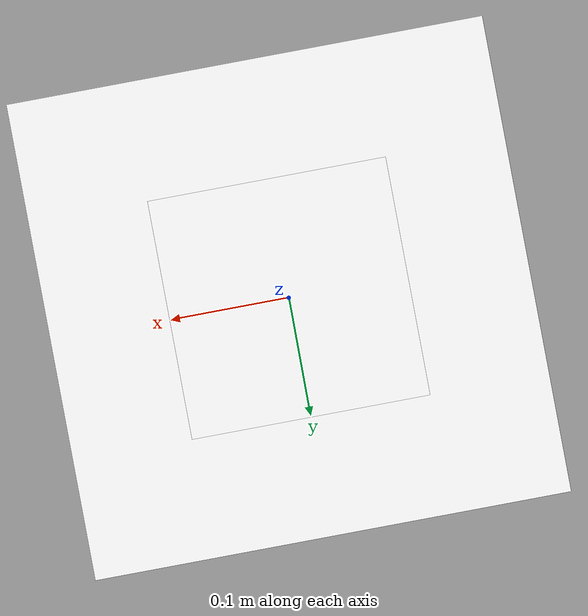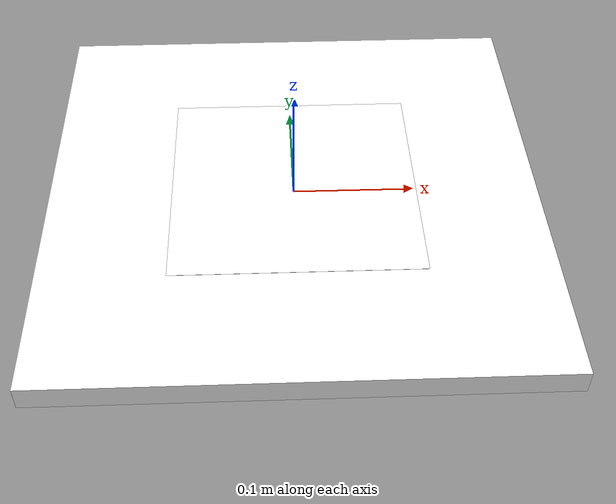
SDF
<?xml version="1.0" encoding="UTF-8"?>
<sdf version="1.9">
  <model name="landing_pad">
    <static>true</static>
    <link name="base_link">
      <pose>0 0 0 0 0 0</pose>

      <collision name="base_collision">
        <geometry>
          <box>
            <size>0.40 0.40 0.02</size>
          </box>
        </geometry>
      </collision>

      <!-- White base (quiet zone) -->
      <visual name="base_visual">
        <pose>0 0 0 0 0 0</pose>
        <geometry>
          <box>
            <size>0.40 0.40 0.02</size>
          </box>
        </geometry>
        <material>
          <ambient>1 1 1 1</ambient>
          <diffuse>1 1 1 1</diffuse>
          <specular>0.2 0.2 0.2 1</specular>
        </material>
      </visual>

      <!-- ArUco marker plane, sitting just above the base top face (z=0.01). -->
      <visual name="marker_visual">
        <pose>0 0 0.011 0 0 0</pose>
        <geometry>
          <plane>
            <normal>0 0 1</normal>
            <size>0.20 0.20</size>
          </plane>
        </geometry>
        <material>
          <ambient>1 1 1 1</ambient>
          <diffuse>1 1 1 1</diffuse>
          <pbr>
            <metal>
              <albedo_map>materials/textures/aruco_5x5_250_id0.png</albedo_map>
              <metalness>0.0</metalness>
              <roughness>1.0</roughness>
            </metal>
          </pbr>
        </material>
      </visual>
    </link>
  </model>
</sdf>
